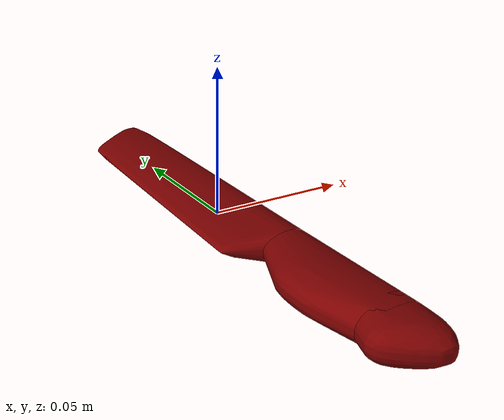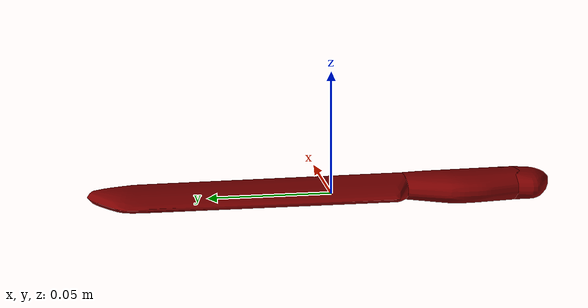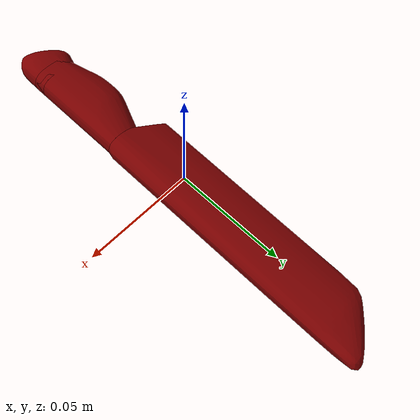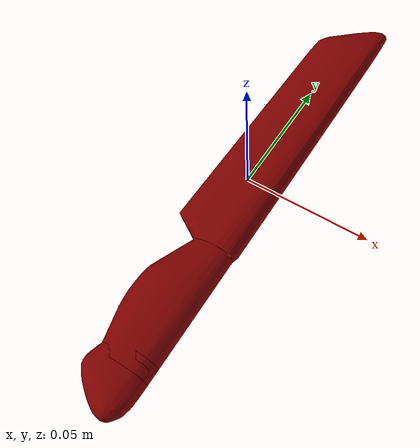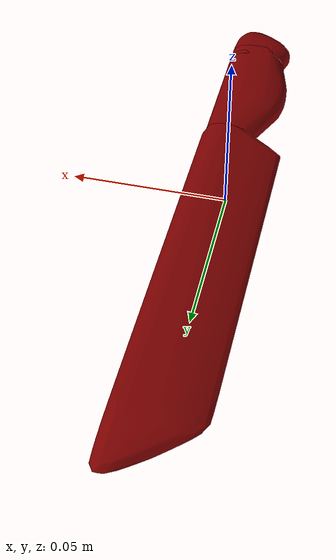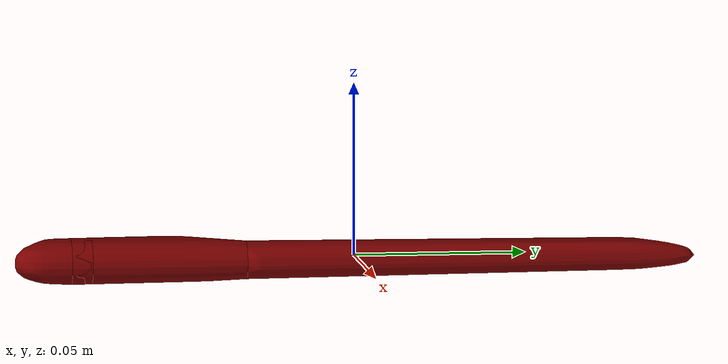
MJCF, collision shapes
<?xml version='1.0' encoding='utf-8'?>
<mujoco model="kitchen_knife_6">
  <asset>
    <mesh file="visual/model_normalized_0.obj" name="model_normalized_0_vis" scale="0.195 0.195 0.195" refquat="0.49999999999999983 0.5 0.5000000000000001 0.5" />
    <mesh file="visual/model_normalized_1.obj" name="model_normalized_1_vis" scale="0.195 0.195 0.195" refquat="0.49999999999999983 0.5 0.5000000000000001 0.5" />
    <texture type="2d" name="image0" file="visual/image0.png" />
    <texture type="2d" name="image1" file="visual/image1.png" />
    <material name="Handle.006" texture="image0" specular="0.5" shininess="0.043554024" />
    <material name="Knife.002" texture="image1" specular="0.5" shininess="0.12607614" />
    <mesh file="collision/collision_mesh_collision_0.obj" name="knife_collision_mesh_0" scale="0.195 0.195 0.195" refquat="0.49999999999999983 0.5 0.5000000000000001 0.5" />
    <mesh file="collision/collision_mesh_collision_1.obj" name="knife_collision_mesh_1" scale="0.195 0.195 0.195" refquat="0.49999999999999983 0.5 0.5000000000000001 0.5" />
    <mesh file="collision/collision_mesh_collision_2.obj" name="knife_collision_mesh_2" scale="0.195 0.195 0.195" refquat="0.49999999999999983 0.5 0.5000000000000001 0.5" />
    </asset>
  <default>
    <default class="region">
      <geom group="1" conaffinity="0" contype="0" rgba="0 1 0 0" />
      </default>
    <default class="collision">
      <geom group="0" rgba="0.5 0 0 0.5" density="1000.0" />
      </default>
    </default>
  <worldbody>
    <body>
      <body name="object">
        <geom solimp="0.998 0.998 0.001" solref="0.001 1" density="100" friction="0.95 0.3 0.1" type="mesh" mesh="model_normalized_0_vis" conaffinity="0" contype="0" group="1" material="Knife.002" />
        <geom solimp="0.998 0.998 0.001" solref="0.001 1" density="100" friction="0.95 0.3 0.1" type="mesh" mesh="model_normalized_1_vis" conaffinity="0" contype="0" group="1" material="Handle.006" />
        <geom class="region" name="reg_bbox" type="box" pos="-0.00012579542507816678 8.201275497548428e-06 2.2717834267213695e-06" size="0.01288465551686232 0.09731689969353843 0.005309905258892356" />
        <geom mesh="knife_collision_mesh_0" type="mesh" class="collision" />
        <geom mesh="knife_collision_mesh_1" type="mesh" class="collision" />
        <geom mesh="knife_collision_mesh_2" type="mesh" class="collision" />
        </body>
      </body>
    </worldbody>
  </mujoco>
